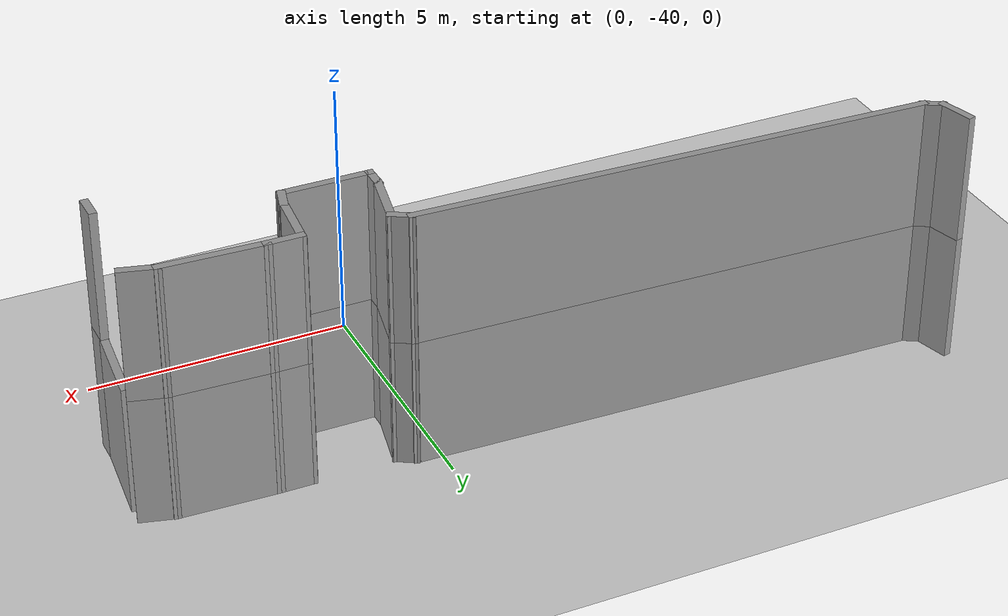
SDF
<sdf version="1.7">
 <world name="default">
  <model name="ground_plane">
   <static>1</static>
   <link name="link">
    <collision name="collision">
     <geometry><plane><normal>0 0 1</normal><size>100 100</size></plane></geometry>
     <surface>
      <contact><collide_bitmask>65535</collide_bitmask></contact>
      <friction><ode><mu>100</mu><mu2>50</mu2></ode></friction>
     </surface>
    </collision>
    <visual name="visual">
     <cast_shadows>0</cast_shadows>
     <geometry><plane><normal>0 0 1</normal><size>100 100</size></plane></geometry>
     <material>
      <script><uri>file://media/materials/scripts/gazebo.material</uri><name>Gazebo/Grey</name></script>
     </material>
    </visual>
   </link>
  </model>
  <model name="EnvDC01">
   <link name="Wall_130">
    <pose>-16.1981 -28.4923 0 0 -0 1.8326</pose>
    <visual name="Wall_130_Visual">
     <pose>0 0 1.25 0 -0 0</pose>
     <geometry><box><size>0.75 0.15 2.5</size></box></geometry>
     <material>
      <script><uri>file://media/materials/scripts/gazebo.material</uri><name>Gazebo/Grey</name></script>
      <ambient>1 1 1 1</ambient>
      <shader type="pixel"/>
     </material>
     <meta><layer>0</layer></meta>
    </visual>
    <collision name="Wall_130_Collision">
     <pose>0 0 1.25 0 -0 0</pose>
     <geometry><box><size>0.75 0.15 2.5</size></box></geometry>
     <surface>
      <friction>
       <ode><mu>1</mu><mu2>1</mu2><fdir1>0 0 0</fdir1><slip1>0</slip1><slip2>0</slip2></ode>
       <torsional>
        <coefficient>1</coefficient>
        <patch_radius>0</patch_radius>
        <surface_radius>0</surface_radius>
        <use_patch_radius>1</use_patch_radius>
        <ode><slip>0</slip></ode>
       </torsional>
      </friction>
      <bounce><restitution_coefficient>0</restitution_coefficient><threshold>1e+06</threshold></bounce>
      <contact>
       <collide_without_contact>0</collide_without_contact>
       <collide_without_contact_bitmask>1</collide_without_contact_bitmask>
       <collide_bitmask>1</collide_bitmask>
       <ode>
        <soft_cfm>0</soft_cfm>
        <soft_erp>0.2</soft_erp>
        <kp>1e+13</kp>
        <kd>1</kd>
        <max_vel>0.01</max_vel>
        <min_depth>0</min_depth>
       </ode>
       <bullet>
        <split_impulse>1</split_impulse>
        <split_impulse_penetration_threshold>-0.01</split_impulse_penetration_threshold>
        <soft_cfm>0</soft_cfm>
        <soft_erp>0.2</soft_erp>
        <kp>1e+13</kp>
        <kd>1</kd>
       </bullet>
      </contact>
     </surface>
    </collision>
   </link>
   <link name="Wall_235">
    <pose>-1.35012 -31.7884 0 0 -0 1.5708</pose>
    <visual name="Wall_235_Visual">
     <pose>0 0 1.25 0 -0 0</pose>
     <geometry><box><size>0.5 0.15 2.5</size></box></geometry>
     <material>
      <script><uri>file://media/materials/scripts/gazebo.material</uri><name>Gazebo/Grey</name></script>
      <ambient>1 1 1 1</ambient>
      <shader type="pixel"/>
     </material>
     <meta><layer>0</layer></meta>
    </visual>
    <collision name="Wall_235_Collision">
     <pose>0 0 1.25 0 -0 0</pose>
     <geometry><box><size>0.5 0.15 2.5</size></box></geometry>
     <surface>
      <friction>
       <ode><mu>1</mu><mu2>1</mu2><fdir1>0 0 0</fdir1><slip1>0</slip1><slip2>0</slip2></ode>
       <torsional>
        <coefficient>1</coefficient>
        <patch_radius>0</patch_radius>
        <surface_radius>0</surface_radius>
        <use_patch_radius>1</use_patch_radius>
        <ode><slip>0</slip></ode>
       </torsional>
      </friction>
      <bounce><restitution_coefficient>0</restitution_coefficient><threshold>1e+06</threshold></bounce>
      <contact>
       <collide_without_contact>0</collide_without_contact>
       <collide_without_contact_bitmask>1</collide_without_contact_bitmask>
       <collide_bitmask>1</collide_bitmask>
       <ode>
        <soft_cfm>0</soft_cfm>
        <soft_erp>0.2</soft_erp>
        <kp>1e+13</kp>
        <kd>1</kd>
        <max_vel>0.01</max_vel>
        <min_depth>0</min_depth>
       </ode>
       <bullet>
        <split_impulse>1</split_impulse>
        <split_impulse_penetration_threshold>-0.01</split_impulse_penetration_threshold>
        <soft_cfm>0</soft_cfm>
        <soft_erp>0.2</soft_erp>
        <kp>1e+13</kp>
        <kd>1</kd>
       </bullet>
      </contact>
     </surface>
    </collision>
   </link>
   <link name="Wall_236">
    <pose>-1.27248 -30.8236 0 0 -0 1.4728</pose>
    <visual name="Wall_236_Visual">
     <pose>0 0 1.25 0 -0 0</pose>
     <geometry><box><size>1.73717 0.15 2.5</size></box></geometry>
     <material>
      <script><uri>file://media/materials/scripts/gazebo.material</uri><name>Gazebo/Grey</name></script>
      <ambient>1 1 1 1</ambient>
      <shader type="pixel"/>
     </material>
     <meta><layer>0</layer></meta>
    </visual>
    <collision name="Wall_236_Collision">
     <pose>0 0 1.25 0 -0 0</pose>
     <geometry><box><size>1.73717 0.15 2.5</size></box></geometry>
     <surface>
      <friction>
       <ode><mu>1</mu><mu2>1</mu2><fdir1>0 0 0</fdir1><slip1>0</slip1><slip2>0</slip2></ode>
       <torsional>
        <coefficient>1</coefficient>
        <patch_radius>0</patch_radius>
        <surface_radius>0</surface_radius>
        <use_patch_radius>1</use_patch_radius>
        <ode><slip>0</slip></ode>
       </torsional>
      </friction>
      <bounce><restitution_coefficient>0</restitution_coefficient><threshold>1e+06</threshold></bounce>
      <contact>
       <collide_without_contact>0</collide_without_contact>
       <collide_without_contact_bitmask>1</collide_without_contact_bitmask>
       <collide_bitmask>1</collide_bitmask>
       <ode>
        <soft_cfm>0</soft_cfm>
        <soft_erp>0.2</soft_erp>
        <kp>1e+13</kp>
        <kd>1</kd>
        <max_vel>0.01</max_vel>
        <min_depth>0</min_depth>
       </ode>
       <bullet>
        <split_impulse>1</split_impulse>
        <split_impulse_penetration_threshold>-0.01</split_impulse_penetration_threshold>
        <soft_cfm>0</soft_cfm>
        <soft_erp>0.2</soft_erp>
        <kp>1e+13</kp>
        <kd>1</kd>
       </bullet>
      </contact>
     </surface>
    </collision>
   </link>
   <link name="Wall_239">
    <pose>-1.48461 -29.6062 0 0 -0 2.87979</pose>
    <visual name="Wall_239_Visual">
     <pose>0 0 1.25 0 -0 0</pose>
     <geometry><box><size>0.75 0.15 2.5</size></box></geometry>
     <material>
      <script><uri>file://media/materials/scripts/gazebo.material</uri><name>Gazebo/Grey</name></script>
      <ambient>1 1 1 1</ambient>
      <shader type="pixel"/>
     </material>
     <meta><layer>0</layer></meta>
    </visual>
    <collision name="Wall_239_Collision">
     <pose>0 0 1.25 0 -0 0</pose>
     <geometry><box><size>0.75 0.15 2.5</size></box></geometry>
     <surface>
      <friction>
       <ode><mu>1</mu><mu2>1</mu2><fdir1>0 0 0</fdir1><slip1>0</slip1><slip2>0</slip2></ode>
       <torsional>
        <coefficient>1</coefficient>
        <patch_radius>0</patch_radius>
        <surface_radius>0</surface_radius>
        <use_patch_radius>1</use_patch_radius>
        <ode><slip>0</slip></ode>
       </torsional>
      </friction>
      <bounce><restitution_coefficient>0</restitution_coefficient><threshold>1e+06</threshold></bounce>
      <contact>
       <collide_without_contact>0</collide_without_contact>
       <collide_without_contact_bitmask>1</collide_without_contact_bitmask>
       <collide_bitmask>1</collide_bitmask>
       <ode>
        <soft_cfm>0</soft_cfm>
        <soft_erp>0.2</soft_erp>
        <kp>1e+13</kp>
        <kd>1</kd>
        <max_vel>0.01</max_vel>
        <min_depth>0</min_depth>
       </ode>
       <bullet>
        <split_impulse>1</split_impulse>
        <split_impulse_penetration_threshold>-0.01</split_impulse_penetration_threshold>
        <soft_cfm>0</soft_cfm>
        <soft_erp>0.2</soft_erp>
        <kp>1e+13</kp>
        <kd>1</kd>
       </bullet>
      </contact>
     </surface>
    </collision>
   </link>
   <link name="Wall_240">
    <pose>-2.69513 -29.4962 0 0 -0 3.10647</pose>
    <visual name="Wall_240_Visual">
     <pose>0 0 1.25 0 -0 0</pose>
     <geometry><box><size>1.99262 0.15 2.5</size></box></geometry>
     <material>
      <script><uri>file://media/materials/scripts/gazebo.material</uri><name>Gazebo/Grey</name></script>
      <ambient>1 1 1 1</ambient>
      <shader type="pixel"/>
     </material>
     <meta><layer>0</layer></meta>
    </visual>
    <collision name="Wall_240_Collision">
     <pose>0 0 1.25 0 -0 0</pose>
     <geometry><box><size>1.99262 0.15 2.5</size></box></geometry>
     <surface>
      <friction>
       <ode><mu>1</mu><mu2>1</mu2><fdir1>0 0 0</fdir1><slip1>0</slip1><slip2>0</slip2></ode>
       <torsional>
        <coefficient>1</coefficient>
        <patch_radius>0</patch_radius>
        <surface_radius>0</surface_radius>
        <use_patch_radius>1</use_patch_radius>
        <ode><slip>0</slip></ode>
       </torsional>
      </friction>
      <bounce><restitution_coefficient>0</restitution_coefficient><threshold>1e+06</threshold></bounce>
      <contact>
       <collide_without_contact>0</collide_without_contact>
       <collide_without_contact_bitmask>1</collide_without_contact_bitmask>
       <collide_bitmask>1</collide_bitmask>
       <ode>
        <soft_cfm>0</soft_cfm>
        <soft_erp>0.2</soft_erp>
        <kp>1e+13</kp>
        <kd>1</kd>
        <max_vel>0.01</max_vel>
        <min_depth>0</min_depth>
       </ode>
       <bullet>
        <split_impulse>1</split_impulse>
        <split_impulse_penetration_threshold>-0.01</split_impulse_penetration_threshold>
        <soft_cfm>0</soft_cfm>
        <soft_erp>0.2</soft_erp>
        <kp>1e+13</kp>
        <kd>1</kd>
       </bullet>
      </contact>
     </surface>
    </collision>
   </link>
   <link name="Wall_241">
    <pose>-3.91587 -29.4638 0 0 -0 3.14159</pose>
    <visual name="Wall_241_Visual">
     <pose>0 0 1.25 0 -0 0</pose>
     <geometry><box><size>0.75 0.15 2.5</size></box></geometry>
     <material>
      <script><uri>file://media/materials/scripts/gazebo.material</uri><name>Gazebo/Grey</name></script>
      <ambient>1 1 1 1</ambient>
      <shader type="pixel"/>
     </material>
     <meta><layer>0</layer></meta>
    </visual>
    <collision name="Wall_241_Collision">
     <pose>0 0 1.25 0 -0 0</pose>
     <geometry><box><size>0.75 0.15 2.5</size></box></geometry>
     <surface>
      <friction>
       <ode><mu>1</mu><mu2>1</mu2><fdir1>0 0 0</fdir1><slip1>0</slip1><slip2>0</slip2></ode>
       <torsional>
        <coefficient>1</coefficient>
        <patch_radius>0</patch_radius>
        <surface_radius>0</surface_radius>
        <use_patch_radius>1</use_patch_radius>
        <ode><slip>0</slip></ode>
       </torsional>
      </friction>
      <bounce><restitution_coefficient>0</restitution_coefficient><threshold>1e+06</threshold></bounce>
      <contact>
       <collide_without_contact>0</collide_without_contact>
       <collide_without_contact_bitmask>1</collide_without_contact_bitmask>
       <collide_bitmask>1</collide_bitmask>
       <ode>
        <soft_cfm>0</soft_cfm>
        <soft_erp>0.2</soft_erp>
        <kp>1e+13</kp>
        <kd>1</kd>
        <max_vel>0.01</max_vel>
        <min_depth>0</min_depth>
       </ode>
       <bullet>
        <split_impulse>1</split_impulse>
        <split_impulse_penetration_threshold>-0.01</split_impulse_penetration_threshold>
        <soft_cfm>0</soft_cfm>
        <soft_erp>0.2</soft_erp>
        <kp>1e+13</kp>
        <kd>1</kd>
       </bullet>
      </contact>
     </surface>
    </collision>
   </link>
   <link name="Wall_243">
    <pose>-4.26763 -29.9951 0 0 0 -1.66793</pose>
    <visual name="Wall_243_Visual">
     <pose>0 0 1.25 0 -0 0</pose>
     <geometry><box><size>1.21755 0.15 2.5</size></box></geometry>
     <material>
      <script><uri>file://media/materials/scripts/gazebo.material</uri><name>Gazebo/Grey</name></script>
      <ambient>1 1 1 1</ambient>
      <shader type="pixel"/>
     </material>
     <meta><layer>0</layer></meta>
    </visual>
    <collision name="Wall_243_Collision">
     <pose>0 0 1.25 0 -0 0</pose>
     <geometry><box><size>1.21755 0.15 2.5</size></box></geometry>
     <surface>
      <friction>
       <ode><mu>1</mu><mu2>1</mu2><fdir1>0 0 0</fdir1><slip1>0</slip1><slip2>0</slip2></ode>
       <torsional>
        <coefficient>1</coefficient>
        <patch_radius>0</patch_radius>
        <surface_radius>0</surface_radius>
        <use_patch_radius>1</use_patch_radius>
        <ode><slip>0</slip></ode>
       </torsional>
      </friction>
      <bounce><restitution_coefficient>0</restitution_coefficient><threshold>1e+06</threshold></bounce>
      <contact>
       <collide_without_contact>0</collide_without_contact>
       <collide_without_contact_bitmask>1</collide_without_contact_bitmask>
       <collide_bitmask>1</collide_bitmask>
       <ode>
        <soft_cfm>0</soft_cfm>
        <soft_erp>0.2</soft_erp>
        <kp>1e+13</kp>
        <kd>1</kd>
        <max_vel>0.01</max_vel>
        <min_depth>0</min_depth>
       </ode>
       <bullet>
        <split_impulse>1</split_impulse>
        <split_impulse_penetration_threshold>-0.01</split_impulse_penetration_threshold>
        <soft_cfm>0</soft_cfm>
        <soft_erp>0.2</soft_erp>
        <kp>1e+13</kp>
        <kd>1</kd>
       </bullet>
      </contact>
     </surface>
    </collision>
   </link>
   <link name="Wall_244">
    <pose>-4.36469 -30.6954 0 0 0 -1.8326</pose>
    <visual name="Wall_244_Visual">
     <pose>0 0 1.25 0 -0 0</pose>
     <geometry><box><size>0.5 0.15 2.5</size></box></geometry>
     <material>
      <script><uri>file://media/materials/scripts/gazebo.material</uri><name>Gazebo/Grey</name></script>
      <ambient>1 1 1 1</ambient>
      <shader type="pixel"/>
     </material>
     <meta><layer>0</layer></meta>
    </visual>
    <collision name="Wall_244_Collision">
     <pose>0 0 1.25 0 -0 0</pose>
     <geometry><box><size>0.5 0.15 2.5</size></box></geometry>
     <surface>
      <friction>
       <ode><mu>1</mu><mu2>1</mu2><fdir1>0 0 0</fdir1><slip1>0</slip1><slip2>0</slip2></ode>
       <torsional>
        <coefficient>1</coefficient>
        <patch_radius>0</patch_radius>
        <surface_radius>0</surface_radius>
        <use_patch_radius>1</use_patch_radius>
        <ode><slip>0</slip></ode>
       </torsional>
      </friction>
      <bounce><restitution_coefficient>0</restitution_coefficient><threshold>1e+06</threshold></bounce>
      <contact>
       <collide_without_contact>0</collide_without_contact>
       <collide_without_contact_bitmask>1</collide_without_contact_bitmask>
       <collide_bitmask>1</collide_bitmask>
       <ode>
        <soft_cfm>0</soft_cfm>
        <soft_erp>0.2</soft_erp>
        <kp>1e+13</kp>
        <kd>1</kd>
        <max_vel>0.01</max_vel>
        <min_depth>0</min_depth>
       </ode>
       <bullet>
        <split_impulse>1</split_impulse>
        <split_impulse_penetration_threshold>-0.01</split_impulse_penetration_threshold>
        <soft_cfm>0</soft_cfm>
        <soft_erp>0.2</soft_erp>
        <kp>1e+13</kp>
        <kd>1</kd>
       </bullet>
      </contact>
     </surface>
    </collision>
   </link>
   <link name="Wall_245">
    <pose>-5.20998 -30.8644 0 0 -0 3.14159</pose>
    <visual name="Wall_245_Visual">
     <pose>0 0 1.25 0 -0 0</pose>
     <geometry><box><size>1.75 0.15 2.5</size></box></geometry>
     <material>
      <script><uri>file://media/materials/scripts/gazebo.material</uri><name>Gazebo/Grey</name></script>
      <ambient>1 1 1 1</ambient>
      <shader type="pixel"/>
     </material>
     <meta><layer>0</layer></meta>
    </visual>
    <collision name="Wall_245_Collision">
     <pose>0 0 1.25 0 -0 0</pose>
     <geometry><box><size>1.75 0.15 2.5</size></box></geometry>
     <surface>
      <friction>
       <ode><mu>1</mu><mu2>1</mu2><fdir1>0 0 0</fdir1><slip1>0</slip1><slip2>0</slip2></ode>
       <torsional>
        <coefficient>1</coefficient>
        <patch_radius>0</patch_radius>
        <surface_radius>0</surface_radius>
        <use_patch_radius>1</use_patch_radius>
        <ode><slip>0</slip></ode>
       </torsional>
      </friction>
      <bounce><restitution_coefficient>0</restitution_coefficient><threshold>1e+06</threshold></bounce>
      <contact>
       <collide_without_contact>0</collide_without_contact>
       <collide_without_contact_bitmask>1</collide_without_contact_bitmask>
       <collide_bitmask>1</collide_bitmask>
       <ode>
        <soft_cfm>0</soft_cfm>
        <soft_erp>0.2</soft_erp>
        <kp>1e+13</kp>
        <kd>1</kd>
        <max_vel>0.01</max_vel>
        <min_depth>0</min_depth>
       </ode>
       <bullet>
        <split_impulse>1</split_impulse>
        <split_impulse_penetration_threshold>-0.01</split_impulse_penetration_threshold>
        <soft_cfm>0</soft_cfm>
        <soft_erp>0.2</soft_erp>
        <kp>1e+13</kp>
        <kd>1</kd>
       </bullet>
      </contact>
     </surface>
    </collision>
   </link>
   <link name="Wall_246">
    <pose>-6.00998 -30.6894 0 0 -0 1.5708</pose>
    <visual name="Wall_246_Visual">
     <pose>0 0 1.25 0 -0 0</pose>
     <geometry><box><size>0.5 0.15 2.5</size></box></geometry>
     <material>
      <script><uri>file://media/materials/scripts/gazebo.material</uri><name>Gazebo/Grey</name></script>
      <ambient>1 1 1 1</ambient>
      <shader type="pixel"/>
     </material>
     <meta><layer>0</layer></meta>
    </visual>
    <collision name="Wall_246_Collision">
     <pose>0 0 1.25 0 -0 0</pose>
     <geometry><box><size>0.5 0.15 2.5</size></box></geometry>
     <surface>
      <friction>
       <ode><mu>1</mu><mu2>1</mu2><fdir1>0 0 0</fdir1><slip1>0</slip1><slip2>0</slip2></ode>
       <torsional>
        <coefficient>1</coefficient>
        <patch_radius>0</patch_radius>
        <surface_radius>0</surface_radius>
        <use_patch_radius>1</use_patch_radius>
        <ode><slip>0</slip></ode>
       </torsional>
      </friction>
      <bounce><restitution_coefficient>0</restitution_coefficient><threshold>1e+06</threshold></bounce>
      <contact>
       <collide_without_contact>0</collide_without_contact>
       <collide_without_contact_bitmask>1</collide_without_contact_bitmask>
       <collide_bitmask>1</collide_bitmask>
       <ode>
        <soft_cfm>0</soft_cfm>
        <soft_erp>0.2</soft_erp>
        <kp>1e+13</kp>
        <kd>1</kd>
        <max_vel>0.01</max_vel>
        <min_depth>0</min_depth>
       </ode>
       <bullet>
        <split_impulse>1</split_impulse>
        <split_impulse_penetration_threshold>-0.01</split_impulse_penetration_threshold>
        <soft_cfm>0</soft_cfm>
        <soft_erp>0.2</soft_erp>
        <kp>1e+13</kp>
        <kd>1</kd>
       </bullet>
      </contact>
     </surface>
    </collision>
   </link>
   <link name="Wall_248">
    <pose>-5.89998 -29.9789 0 0 -0 1.36821</pose>
    <visual name="Wall_248_Visual">
     <pose>0 0 1.25 0 -0 0</pose>
     <geometry><box><size>1.2434 0.15 2.5</size></box></geometry>
     <material>
      <script><uri>file://media/materials/scripts/gazebo.material</uri><name>Gazebo/Grey</name></script>
      <ambient>1 1 1 1</ambient>
      <shader type="pixel"/>
     </material>
     <meta><layer>0</layer></meta>
    </visual>
    <collision name="Wall_248_Collision">
     <pose>0 0 1.25 0 -0 0</pose>
     <geometry><box><size>1.2434 0.15 2.5</size></box></geometry>
     <surface>
      <friction>
       <ode><mu>1</mu><mu2>1</mu2><fdir1>0 0 0</fdir1><slip1>0</slip1><slip2>0</slip2></ode>
       <torsional>
        <coefficient>1</coefficient>
        <patch_radius>0</patch_radius>
        <surface_radius>0</surface_radius>
        <use_patch_radius>1</use_patch_radius>
        <ode><slip>0</slip></ode>
       </torsional>
      </friction>
      <bounce><restitution_coefficient>0</restitution_coefficient><threshold>1e+06</threshold></bounce>
      <contact>
       <collide_without_contact>0</collide_without_contact>
       <collide_without_contact_bitmask>1</collide_without_contact_bitmask>
       <collide_bitmask>1</collide_bitmask>
       <ode>
        <soft_cfm>0</soft_cfm>
        <soft_erp>0.2</soft_erp>
        <kp>1e+13</kp>
        <kd>1</kd>
        <max_vel>0.01</max_vel>
        <min_depth>0</min_depth>
       </ode>
       <bullet>
        <split_impulse>1</split_impulse>
        <split_impulse_penetration_threshold>-0.01</split_impulse_penetration_threshold>
        <soft_cfm>0</soft_cfm>
        <soft_erp>0.2</soft_erp>
        <kp>1e+13</kp>
        <kd>1</kd>
       </bullet>
      </contact>
     </surface>
    </collision>
   </link>
   <link name="Wall_250">
    <pose>-15.9689 -28.8696 0 0 0 -0.523599</pose>
    <visual name="Wall_250_Visual">
     <pose>0 0 1.25 0 -0 0</pose>
     <geometry><box><size>0.5 0.15 2.5</size></box></geometry>
     <material>
      <script><uri>file://media/materials/scripts/gazebo.material</uri><name>Gazebo/Grey</name></script>
      <ambient>1 1 1 1</ambient>
      <shader type="pixel"/>
     </material>
     <meta><layer>0</layer></meta>
    </visual>
    <collision name="Wall_250_Collision">
     <pose>0 0 1.25 0 -0 0</pose>
     <geometry><box><size>0.5 0.15 2.5</size></box></geometry>
     <surface>
      <friction>
       <ode><mu>1</mu><mu2>1</mu2><fdir1>0 0 0</fdir1><slip1>0</slip1><slip2>0</slip2></ode>
       <torsional>
        <coefficient>1</coefficient>
        <patch_radius>0</patch_radius>
        <surface_radius>0</surface_radius>
        <use_patch_radius>1</use_patch_radius>
        <ode><slip>0</slip></ode>
       </torsional>
      </friction>
      <bounce><restitution_coefficient>0</restitution_coefficient><threshold>1e+06</threshold></bounce>
      <contact>
       <collide_without_contact>0</collide_without_contact>
       <collide_without_contact_bitmask>1</collide_without_contact_bitmask>
       <collide_bitmask>1</collide_bitmask>
       <ode>
        <soft_cfm>0</soft_cfm>
        <soft_erp>0.2</soft_erp>
        <kp>1e+13</kp>
        <kd>1</kd>
        <max_vel>0.01</max_vel>
        <min_depth>0</min_depth>
       </ode>
       <bullet>
        <split_impulse>1</split_impulse>
        <split_impulse_penetration_threshold>-0.01</split_impulse_penetration_threshold>
        <soft_cfm>0</soft_cfm>
        <soft_erp>0.2</soft_erp>
        <kp>1e+13</kp>
        <kd>1</kd>
       </bullet>
      </contact>
     </surface>
    </collision>
   </link>
   <link name="Wall_251">
    <pose>-10.9552 -29.1127 0 0 0 -0.032002</pose>
    <visual name="Wall_251_Visual">
     <pose>0 0 1.25 0 -0 0</pose>
     <geometry><box><size>9.87927 0.15 2.5</size></box></geometry>
     <material>
      <script><uri>file://media/materials/scripts/gazebo.material</uri><name>Gazebo/Grey</name></script>
      <ambient>1 1 1 1</ambient>
      <shader type="pixel"/>
     </material>
     <meta><layer>0</layer></meta>
    </visual>
    <collision name="Wall_251_Collision">
     <pose>0 0 1.25 0 -0 0</pose>
     <geometry><box><size>9.87927 0.15 2.5</size></box></geometry>
     <surface>
      <friction>
       <ode><mu>1</mu><mu2>1</mu2><fdir1>0 0 0</fdir1><slip1>0</slip1><slip2>0</slip2></ode>
       <torsional>
        <coefficient>1</coefficient>
        <patch_radius>0</patch_radius>
        <surface_radius>0</surface_radius>
        <use_patch_radius>1</use_patch_radius>
        <ode><slip>0</slip></ode>
       </torsional>
      </friction>
      <bounce><restitution_coefficient>0</restitution_coefficient><threshold>1e+06</threshold></bounce>
      <contact>
       <collide_without_contact>0</collide_without_contact>
       <collide_without_contact_bitmask>1</collide_without_contact_bitmask>
       <collide_bitmask>1</collide_bitmask>
       <ode>
        <soft_cfm>0</soft_cfm>
        <soft_erp>0.2</soft_erp>
        <kp>1e+13</kp>
        <kd>1</kd>
        <max_vel>0.01</max_vel>
        <min_depth>0</min_depth>
       </ode>
       <bullet>
        <split_impulse>1</split_impulse>
        <split_impulse_penetration_threshold>-0.01</split_impulse_penetration_threshold>
        <soft_cfm>0</soft_cfm>
        <soft_erp>0.2</soft_erp>
        <kp>1e+13</kp>
        <kd>1</kd>
       </bullet>
      </contact>
     </surface>
    </collision>
   </link>
   <link name="Wall_252">
    <pose>-5.94154 -29.3559 0 0 0 -0.523599</pose>
    <visual name="Wall_252_Visual">
     <pose>0 0 1.25 0 -0 0</pose>
     <geometry><box><size>0.5 0.15 2.5</size></box></geometry>
     <material>
      <script><uri>file://media/materials/scripts/gazebo.material</uri><name>Gazebo/Grey</name></script>
      <ambient>1 1 1 1</ambient>
      <shader type="pixel"/>
     </material>
     <meta><layer>0</layer></meta>
    </visual>
    <collision name="Wall_252_Collision">
     <pose>0 0 1.25 0 -0 0</pose>
     <geometry><box><size>0.5 0.15 2.5</size></box></geometry>
     <surface>
      <friction>
       <ode><mu>1</mu><mu2>1</mu2><fdir1>0 0 0</fdir1><slip1>0</slip1><slip2>0</slip2></ode>
       <torsional>
        <coefficient>1</coefficient>
        <patch_radius>0</patch_radius>
        <surface_radius>0</surface_radius>
        <use_patch_radius>1</use_patch_radius>
        <ode><slip>0</slip></ode>
       </torsional>
      </friction>
      <bounce><restitution_coefficient>0</restitution_coefficient><threshold>1e+06</threshold></bounce>
      <contact>
       <collide_without_contact>0</collide_without_contact>
       <collide_without_contact_bitmask>1</collide_without_contact_bitmask>
       <collide_bitmask>1</collide_bitmask>
       <ode>
        <soft_cfm>0</soft_cfm>
        <soft_erp>0.2</soft_erp>
        <kp>1e+13</kp>
        <kd>1</kd>
        <max_vel>0.01</max_vel>
        <min_depth>0</min_depth>
       </ode>
       <bullet>
        <split_impulse>1</split_impulse>
        <split_impulse_penetration_threshold>-0.01</split_impulse_penetration_threshold>
        <soft_cfm>0</soft_cfm>
        <soft_erp>0.2</soft_erp>
        <kp>1e+13</kp>
        <kd>1</kd>
       </bullet>
      </contact>
     </surface>
    </collision>
   </link>
   <link name="Wall_328">
    <pose>-16.1981 -28.4923 2.5 0 -0 1.8326</pose>
    <visual name="Wall_328_Visual">
     <pose>0 0 1.25 0 -0 0</pose>
     <geometry><box><size>0.75 0.15 2.5</size></box></geometry>
     <material>
      <script><uri>file://media/materials/scripts/gazebo.material</uri><name>Gazebo/Grey</name></script>
      <ambient>1 1 1 1</ambient>
      <shader type="pixel"/>
     </material>
     <meta><layer>1</layer></meta>
    </visual>
    <collision name="Wall_328_Collision">
     <pose>0 0 1.25 0 -0 0</pose>
     <geometry><box><size>0.75 0.15 2.5</size></box></geometry>
     <surface>
      <friction>
       <ode><mu>1</mu><mu2>1</mu2><fdir1>0 0 0</fdir1><slip1>0</slip1><slip2>0</slip2></ode>
       <torsional>
        <coefficient>1</coefficient>
        <patch_radius>0</patch_radius>
        <surface_radius>0</surface_radius>
        <use_patch_radius>1</use_patch_radius>
        <ode><slip>0</slip></ode>
       </torsional>
      </friction>
      <bounce><restitution_coefficient>0</restitution_coefficient><threshold>1e+06</threshold></bounce>
      <contact>
       <collide_without_contact>0</collide_without_contact>
       <collide_without_contact_bitmask>1</collide_without_contact_bitmask>
       <collide_bitmask>1</collide_bitmask>
       <ode>
        <soft_cfm>0</soft_cfm>
        <soft_erp>0.2</soft_erp>
        <kp>1e+13</kp>
        <kd>1</kd>
        <max_vel>0.01</max_vel>
        <min_depth>0</min_depth>
       </ode>
       <bullet>
        <split_impulse>1</split_impulse>
        <split_impulse_penetration_threshold>-0.01</split_impulse_penetration_threshold>
        <soft_cfm>0</soft_cfm>
        <soft_erp>0.2</soft_erp>
        <kp>1e+13</kp>
        <kd>1</kd>
       </bullet>
      </contact>
     </surface>
    </collision>
   </link>
   <link name="Wall_401">
    <pose>-1.35012 -31.7884 2.5 0 -0 1.5708</pose>
    <visual name="Wall_401_Visual">
     <pose>0 0 1.25 0 -0 0</pose>
     <geometry><box><size>0.5 0.15 2.5</size></box></geometry>
     <material>
      <script><uri>file://media/materials/scripts/gazebo.material</uri><name>Gazebo/Grey</name></script>
      <ambient>1 1 1 1</ambient>
      <shader type="pixel"/>
     </material>
     <meta><layer>1</layer></meta>
    </visual>
    <collision name="Wall_401_Collision">
     <pose>0 0 1.25 0 -0 0</pose>
     <geometry><box><size>0.5 0.15 2.5</size></box></geometry>
     <surface>
      <friction>
       <ode><mu>1</mu><mu2>1</mu2><fdir1>0 0 0</fdir1><slip1>0</slip1><slip2>0</slip2></ode>
       <torsional>
        <coefficient>1</coefficient>
        <patch_radius>0</patch_radius>
        <surface_radius>0</surface_radius>
        <use_patch_radius>1</use_patch_radius>
        <ode><slip>0</slip></ode>
       </torsional>
      </friction>
      <bounce><restitution_coefficient>0</restitution_coefficient><threshold>1e+06</threshold></bounce>
      <contact>
       <collide_without_contact>0</collide_without_contact>
       <collide_without_contact_bitmask>1</collide_without_contact_bitmask>
       <collide_bitmask>1</collide_bitmask>
       <ode>
        <soft_cfm>0</soft_cfm>
        <soft_erp>0.2</soft_erp>
        <kp>1e+13</kp>
        <kd>1</kd>
        <max_vel>0.01</max_vel>
        <min_depth>0</min_depth>
       </ode>
       <bullet>
        <split_impulse>1</split_impulse>
        <split_impulse_penetration_threshold>-0.01</split_impulse_penetration_threshold>
        <soft_cfm>0</soft_cfm>
        <soft_erp>0.2</soft_erp>
        <kp>1e+13</kp>
        <kd>1</kd>
       </bullet>
      </contact>
     </surface>
    </collision>
   </link>
   <link name="Wall_404">
    <pose>-1.48461 -29.6062 2.5 0 -0 2.87979</pose>
    <visual name="Wall_404_Visual">
     <pose>0 0 1.25 0 -0 0</pose>
     <geometry><box><size>0.75 0.15 2.5</size></box></geometry>
     <material>
      <script><uri>file://media/materials/scripts/gazebo.material</uri><name>Gazebo/Grey</name></script>
      <ambient>1 1 1 1</ambient>
      <shader type="pixel"/>
     </material>
     <meta><layer>1</layer></meta>
    </visual>
    <collision name="Wall_404_Collision">
     <pose>0 0 1.25 0 -0 0</pose>
     <geometry><box><size>0.75 0.15 2.5</size></box></geometry>
     <surface>
      <friction>
       <ode><mu>1</mu><mu2>1</mu2><fdir1>0 0 0</fdir1><slip1>0</slip1><slip2>0</slip2></ode>
       <torsional>
        <coefficient>1</coefficient>
        <patch_radius>0</patch_radius>
        <surface_radius>0</surface_radius>
        <use_patch_radius>1</use_patch_radius>
        <ode><slip>0</slip></ode>
       </torsional>
      </friction>
      <bounce><restitution_coefficient>0</restitution_coefficient><threshold>1e+06</threshold></bounce>
      <contact>
       <collide_without_contact>0</collide_without_contact>
       <collide_without_contact_bitmask>1</collide_without_contact_bitmask>
       <collide_bitmask>1</collide_bitmask>
       <ode>
        <soft_cfm>0</soft_cfm>
        <soft_erp>0.2</soft_erp>
        <kp>1e+13</kp>
        <kd>1</kd>
        <max_vel>0.01</max_vel>
        <min_depth>0</min_depth>
       </ode>
       <bullet>
        <split_impulse>1</split_impulse>
        <split_impulse_penetration_threshold>-0.01</split_impulse_penetration_threshold>
        <soft_cfm>0</soft_cfm>
        <soft_erp>0.2</soft_erp>
        <kp>1e+13</kp>
        <kd>1</kd>
       </bullet>
      </contact>
     </surface>
    </collision>
   </link>
   <link name="Wall_405">
    <pose>-2.69512 -29.4962 2.5 0 -0 3.10647</pose>
    <visual name="Wall_405_Visual">
     <pose>0 0 1.25 0 -0 0</pose>
     <geometry><box><size>1.99262 0.15 2.5</size></box></geometry>
     <material>
      <script><uri>file://media/materials/scripts/gazebo.material</uri><name>Gazebo/Grey</name></script>
      <ambient>1 1 1 1</ambient>
      <shader type="pixel"/>
     </material>
     <meta><layer>1</layer></meta>
    </visual>
    <collision name="Wall_405_Collision">
     <pose>0 0 1.25 0 -0 0</pose>
     <geometry><box><size>1.99262 0.15 2.5</size></box></geometry>
     <surface>
      <friction>
       <ode><mu>1</mu><mu2>1</mu2><fdir1>0 0 0</fdir1><slip1>0</slip1><slip2>0</slip2></ode>
       <torsional>
        <coefficient>1</coefficient>
        <patch_radius>0</patch_radius>
        <surface_radius>0</surface_radius>
        <use_patch_radius>1</use_patch_radius>
        <ode><slip>0</slip></ode>
       </torsional>
      </friction>
      <bounce><restitution_coefficient>0</restitution_coefficient><threshold>1e+06</threshold></bounce>
      <contact>
       <collide_without_contact>0</collide_without_contact>
       <collide_without_contact_bitmask>1</collide_without_contact_bitmask>
       <collide_bitmask>1</collide_bitmask>
       <ode>
        <soft_cfm>0</soft_cfm>
        <soft_erp>0.2</soft_erp>
        <kp>1e+13</kp>
        <kd>1</kd>
        <max_vel>0.01</max_vel>
        <min_depth>0</min_depth>
       </ode>
       <bullet>
        <split_impulse>1</split_impulse>
        <split_impulse_penetration_threshold>-0.01</split_impulse_penetration_threshold>
        <soft_cfm>0</soft_cfm>
        <soft_erp>0.2</soft_erp>
        <kp>1e+13</kp>
        <kd>1</kd>
       </bullet>
      </contact>
     </surface>
    </collision>
   </link>
   <link name="Wall_406">
    <pose>-3.91587 -29.4638 2.5 0 -0 3.14159</pose>
    <visual name="Wall_406_Visual">
     <pose>0 0 1.25 0 -0 0</pose>
     <geometry><box><size>0.75 0.15 2.5</size></box></geometry>
     <material>
      <script><uri>file://media/materials/scripts/gazebo.material</uri><name>Gazebo/Grey</name></script>
      <ambient>1 1 1 1</ambient>
      <shader type="pixel"/>
     </material>
     <meta><layer>1</layer></meta>
    </visual>
    <collision name="Wall_406_Collision">
     <pose>0 0 1.25 0 -0 0</pose>
     <geometry><box><size>0.75 0.15 2.5</size></box></geometry>
     <surface>
      <friction>
       <ode><mu>1</mu><mu2>1</mu2><fdir1>0 0 0</fdir1><slip1>0</slip1><slip2>0</slip2></ode>
       <torsional>
        <coefficient>1</coefficient>
        <patch_radius>0</patch_radius>
        <surface_radius>0</surface_radius>
        <use_patch_radius>1</use_patch_radius>
        <ode><slip>0</slip></ode>
       </torsional>
      </friction>
      <bounce><restitution_coefficient>0</restitution_coefficient><threshold>1e+06</threshold></bounce>
      <contact>
       <collide_without_contact>0</collide_without_contact>
       <collide_without_contact_bitmask>1</collide_without_contact_bitmask>
       <collide_bitmask>1</collide_bitmask>
       <ode>
        <soft_cfm>0</soft_cfm>
        <soft_erp>0.2</soft_erp>
        <kp>1e+13</kp>
        <kd>1</kd>
        <max_vel>0.01</max_vel>
        <min_depth>0</min_depth>
       </ode>
       <bullet>
        <split_impulse>1</split_impulse>
        <split_impulse_penetration_threshold>-0.01</split_impulse_penetration_threshold>
        <soft_cfm>0</soft_cfm>
        <soft_erp>0.2</soft_erp>
        <kp>1e+13</kp>
        <kd>1</kd>
       </bullet>
      </contact>
     </surface>
    </collision>
   </link>
   <link name="Wall_407">
    <pose>-4.26763 -29.9951 2.5 0 0 -1.66793</pose>
    <visual name="Wall_407_Visual">
     <pose>0 0 1.25 0 -0 0</pose>
     <geometry><box><size>1.21755 0.15 2.5</size></box></geometry>
     <material>
      <script><uri>file://media/materials/scripts/gazebo.material</uri><name>Gazebo/Grey</name></script>
      <ambient>1 1 1 1</ambient>
      <shader type="pixel"/>
     </material>
     <meta><layer>1</layer></meta>
    </visual>
    <collision name="Wall_407_Collision">
     <pose>0 0 1.25 0 -0 0</pose>
     <geometry><box><size>1.21755 0.15 2.5</size></box></geometry>
     <surface>
      <friction>
       <ode><mu>1</mu><mu2>1</mu2><fdir1>0 0 0</fdir1><slip1>0</slip1><slip2>0</slip2></ode>
       <torsional>
        <coefficient>1</coefficient>
        <patch_radius>0</patch_radius>
        <surface_radius>0</surface_radius>
        <use_patch_radius>1</use_patch_radius>
        <ode><slip>0</slip></ode>
       </torsional>
      </friction>
      <bounce><restitution_coefficient>0</restitution_coefficient><threshold>1e+06</threshold></bounce>
      <contact>
       <collide_without_contact>0</collide_without_contact>
       <collide_without_contact_bitmask>1</collide_without_contact_bitmask>
       <collide_bitmask>1</collide_bitmask>
       <ode>
        <soft_cfm>0</soft_cfm>
        <soft_erp>0.2</soft_erp>
        <kp>1e+13</kp>
        <kd>1</kd>
        <max_vel>0.01</max_vel>
        <min_depth>0</min_depth>
       </ode>
       <bullet>
        <split_impulse>1</split_impulse>
        <split_impulse_penetration_threshold>-0.01</split_impulse_penetration_threshold>
        <soft_cfm>0</soft_cfm>
        <soft_erp>0.2</soft_erp>
        <kp>1e+13</kp>
        <kd>1</kd>
       </bullet>
      </contact>
     </surface>
    </collision>
   </link>
   <link name="Wall_408">
    <pose>-4.36469 -30.6954 2.5 0 0 -1.8326</pose>
    <visual name="Wall_408_Visual">
     <pose>0 0 1.25 0 -0 0</pose>
     <geometry><box><size>0.5 0.15 2.5</size></box></geometry>
     <material>
      <script><uri>file://media/materials/scripts/gazebo.material</uri><name>Gazebo/Grey</name></script>
      <ambient>1 1 1 1</ambient>
      <shader type="pixel"/>
     </material>
     <meta><layer>1</layer></meta>
    </visual>
    <collision name="Wall_408_Collision">
     <pose>0 0 1.25 0 -0 0</pose>
     <geometry><box><size>0.5 0.15 2.5</size></box></geometry>
     <surface>
      <friction>
       <ode><mu>1</mu><mu2>1</mu2><fdir1>0 0 0</fdir1><slip1>0</slip1><slip2>0</slip2></ode>
       <torsional>
        <coefficient>1</coefficient>
        <patch_radius>0</patch_radius>
        <surface_radius>0</surface_radius>
        <use_patch_radius>1</use_patch_radius>
        <ode><slip>0</slip></ode>
       </torsional>
      </friction>
      <bounce><restitution_coefficient>0</restitution_coefficient><threshold>1e+06</threshold></bounce>
      <contact>
       <collide_without_contact>0</collide_without_contact>
       <collide_without_contact_bitmask>1</collide_without_contact_bitmask>
       <collide_bitmask>1</collide_bitmask>
       <ode>
        <soft_cfm>0</soft_cfm>
        <soft_erp>0.2</soft_erp>
        <kp>1e+13</kp>
        <kd>1</kd>
        <max_vel>0.01</max_vel>
        <min_depth>0</min_depth>
       </ode>
       <bullet>
        <split_impulse>1</split_impulse>
        <split_impulse_penetration_threshold>-0.01</split_impulse_penetration_threshold>
        <soft_cfm>0</soft_cfm>
        <soft_erp>0.2</soft_erp>
        <kp>1e+13</kp>
        <kd>1</kd>
       </bullet>
      </contact>
     </surface>
    </collision>
   </link>
   <link name="Wall_409">
    <pose>-5.20998 -30.8644 2.5 0 -0 3.14159</pose>
    <visual name="Wall_409_Visual">
     <pose>0 0 1.25 0 -0 0</pose>
     <geometry><box><size>1.75 0.15 2.5</size></box></geometry>
     <material>
      <script><uri>file://media/materials/scripts/gazebo.material</uri><name>Gazebo/Grey</name></script>
      <ambient>1 1 1 1</ambient>
      <shader type="pixel"/>
     </material>
     <meta><layer>1</layer></meta>
    </visual>
    <collision name="Wall_409_Collision">
     <pose>0 0 1.25 0 -0 0</pose>
     <geometry><box><size>1.75 0.15 2.5</size></box></geometry>
     <surface>
      <friction>
       <ode><mu>1</mu><mu2>1</mu2><fdir1>0 0 0</fdir1><slip1>0</slip1><slip2>0</slip2></ode>
       <torsional>
        <coefficient>1</coefficient>
        <patch_radius>0</patch_radius>
        <surface_radius>0</surface_radius>
        <use_patch_radius>1</use_patch_radius>
        <ode><slip>0</slip></ode>
       </torsional>
      </friction>
      <bounce><restitution_coefficient>0</restitution_coefficient><threshold>1e+06</threshold></bounce>
      <contact>
       <collide_without_contact>0</collide_without_contact>
       <collide_without_contact_bitmask>1</collide_without_contact_bitmask>
       <collide_bitmask>1</collide_bitmask>
       <ode>
        <soft_cfm>0</soft_cfm>
        <soft_erp>0.2</soft_erp>
        <kp>1e+13</kp>
        <kd>1</kd>
        <max_vel>0.01</max_vel>
        <min_depth>0</min_depth>
       </ode>
       <bullet>
        <split_impulse>1</split_impulse>
        <split_impulse_penetration_threshold>-0.01</split_impulse_penetration_threshold>
        <soft_cfm>0</soft_cfm>
        <soft_erp>0.2</soft_erp>
        <kp>1e+13</kp>
        <kd>1</kd>
       </bullet>
      </contact>
     </surface>
    </collision>
   </link>
   <link name="Wall_410">
    <pose>-6.00998 -30.6894 2.5 0 -0 1.5708</pose>
    <visual name="Wall_410_Visual">
     <pose>0 0 1.25 0 -0 0</pose>
     <geometry><box><size>0.5 0.15 2.5</size></box></geometry>
     <material>
      <script><uri>file://media/materials/scripts/gazebo.material</uri><name>Gazebo/Grey</name></script>
      <ambient>1 1 1 1</ambient>
      <shader type="pixel"/>
     </material>
     <meta><layer>1</layer></meta>
    </visual>
    <collision name="Wall_410_Collision">
     <pose>0 0 1.25 0 -0 0</pose>
     <geometry><box><size>0.5 0.15 2.5</size></box></geometry>
     <surface>
      <friction>
       <ode><mu>1</mu><mu2>1</mu2><fdir1>0 0 0</fdir1><slip1>0</slip1><slip2>0</slip2></ode>
       <torsional>
        <coefficient>1</coefficient>
        <patch_radius>0</patch_radius>
        <surface_radius>0</surface_radius>
        <use_patch_radius>1</use_patch_radius>
        <ode><slip>0</slip></ode>
       </torsional>
      </friction>
      <bounce><restitution_coefficient>0</restitution_coefficient><threshold>1e+06</threshold></bounce>
      <contact>
       <collide_without_contact>0</collide_without_contact>
       <collide_without_contact_bitmask>1</collide_without_contact_bitmask>
       <collide_bitmask>1</collide_bitmask>
       <ode>
        <soft_cfm>0</soft_cfm>
        <soft_erp>0.2</soft_erp>
        <kp>1e+13</kp>
        <kd>1</kd>
        <max_vel>0.01</max_vel>
        <min_depth>0</min_depth>
       </ode>
       <bullet>
        <split_impulse>1</split_impulse>
        <split_impulse_penetration_threshold>-0.01</split_impulse_penetration_threshold>
        <soft_cfm>0</soft_cfm>
        <soft_erp>0.2</soft_erp>
        <kp>1e+13</kp>
        <kd>1</kd>
       </bullet>
      </contact>
     </surface>
    </collision>
   </link>
   <link name="Wall_411">
    <pose>-5.89998 -29.9789 2.5 0 -0 1.36821</pose>
    <visual name="Wall_411_Visual">
     <pose>0 0 1.25 0 -0 0</pose>
     <geometry><box><size>1.2434 0.15 2.5</size></box></geometry>
     <material>
      <script><uri>file://media/materials/scripts/gazebo.material</uri><name>Gazebo/Grey</name></script>
      <ambient>1 1 1 1</ambient>
      <shader type="pixel"/>
     </material>
     <meta><layer>1</layer></meta>
    </visual>
    <collision name="Wall_411_Collision">
     <pose>0 0 1.25 0 -0 0</pose>
     <geometry><box><size>1.2434 0.15 2.5</size></box></geometry>
     <surface>
      <friction>
       <ode><mu>1</mu><mu2>1</mu2><fdir1>0 0 0</fdir1><slip1>0</slip1><slip2>0</slip2></ode>
       <torsional>
        <coefficient>1</coefficient>
        <patch_radius>0</patch_radius>
        <surface_radius>0</surface_radius>
        <use_patch_radius>1</use_patch_radius>
        <ode><slip>0</slip></ode>
       </torsional>
      </friction>
      <bounce><restitution_coefficient>0</restitution_coefficient><threshold>1e+06</threshold></bounce>
      <contact>
       <collide_without_contact>0</collide_without_contact>
       <collide_without_contact_bitmask>1</collide_without_contact_bitmask>
       <collide_bitmask>1</collide_bitmask>
       <ode>
        <soft_cfm>0</soft_cfm>
        <soft_erp>0.2</soft_erp>
        <kp>1e+13</kp>
        <kd>1</kd>
        <max_vel>0.01</max_vel>
        <min_depth>0</min_depth>
       </ode>
       <bullet>
        <split_impulse>1</split_impulse>
        <split_impulse_penetration_threshold>-0.01</split_impulse_penetration_threshold>
        <soft_cfm>0</soft_cfm>
        <soft_erp>0.2</soft_erp>
        <kp>1e+13</kp>
        <kd>1</kd>
       </bullet>
      </contact>
     </surface>
    </collision>
   </link>
   <link name="Wall_412">
    <pose>-15.9689 -28.8696 2.5 0 0 -0.523599</pose>
    <visual name="Wall_412_Visual">
     <pose>0 0 1.25 0 -0 0</pose>
     <geometry><box><size>0.5 0.15 2.5</size></box></geometry>
     <material>
      <script><uri>file://media/materials/scripts/gazebo.material</uri><name>Gazebo/Grey</name></script>
      <ambient>1 1 1 1</ambient>
      <shader type="pixel"/>
     </material>
     <meta><layer>1</layer></meta>
    </visual>
    <collision name="Wall_412_Collision">
     <pose>0 0 1.25 0 -0 0</pose>
     <geometry><box><size>0.5 0.15 2.5</size></box></geometry>
     <surface>
      <friction>
       <ode><mu>1</mu><mu2>1</mu2><fdir1>0 0 0</fdir1><slip1>0</slip1><slip2>0</slip2></ode>
       <torsional>
        <coefficient>1</coefficient>
        <patch_radius>0</patch_radius>
        <surface_radius>0</surface_radius>
        <use_patch_radius>1</use_patch_radius>
        <ode><slip>0</slip></ode>
       </torsional>
      </friction>
      <bounce><restitution_coefficient>0</restitution_coefficient><threshold>1e+06</threshold></bounce>
      <contact>
       <collide_without_contact>0</collide_without_contact>
       <collide_without_contact_bitmask>1</collide_without_contact_bitmask>
       <collide_bitmask>1</collide_bitmask>
       <ode>
        <soft_cfm>0</soft_cfm>
        <soft_erp>0.2</soft_erp>
        <kp>1e+13</kp>
        <kd>1</kd>
        <max_vel>0.01</max_vel>
        <min_depth>0</min_depth>
       </ode>
       <bullet>
        <split_impulse>1</split_impulse>
        <split_impulse_penetration_threshold>-0.01</split_impulse_penetration_threshold>
        <soft_cfm>0</soft_cfm>
        <soft_erp>0.2</soft_erp>
        <kp>1e+13</kp>
        <kd>1</kd>
       </bullet>
      </contact>
     </surface>
    </collision>
   </link>
   <link name="Wall_413">
    <pose>-10.9552 -29.1127 2.5 0 0 -0.032002</pose>
    <visual name="Wall_413_Visual">
     <pose>0 0 1.25 0 -0 0</pose>
     <geometry><box><size>9.87927 0.15 2.5</size></box></geometry>
     <material>
      <script><uri>file://media/materials/scripts/gazebo.material</uri><name>Gazebo/Grey</name></script>
      <ambient>1 1 1 1</ambient>
      <shader type="pixel"/>
     </material>
     <meta><layer>1</layer></meta>
    </visual>
    <collision name="Wall_413_Collision">
     <pose>0 0 1.25 0 -0 0</pose>
     <geometry><box><size>9.87927 0.15 2.5</size></box></geometry>
     <surface>
      <friction>
       <ode><mu>1</mu><mu2>1</mu2><fdir1>0 0 0</fdir1><slip1>0</slip1><slip2>0</slip2></ode>
       <torsional>
        <coefficient>1</coefficient>
        <patch_radius>0</patch_radius>
        <surface_radius>0</surface_radius>
        <use_patch_radius>1</use_patch_radius>
        <ode><slip>0</slip></ode>
       </torsional>
      </friction>
      <bounce><restitution_coefficient>0</restitution_coefficient><threshold>1e+06</threshold></bounce>
      <contact>
       <collide_without_contact>0</collide_without_contact>
       <collide_without_contact_bitmask>1</collide_without_contact_bitmask>
       <collide_bitmask>1</collide_bitmask>
       <ode>
        <soft_cfm>0</soft_cfm>
        <soft_erp>0.2</soft_erp>
        <kp>1e+13</kp>
        <kd>1</kd>
        <max_vel>0.01</max_vel>
        <min_depth>0</min_depth>
       </ode>
       <bullet>
        <split_impulse>1</split_impulse>
        <split_impulse_penetration_threshold>-0.01</split_impulse_penetration_threshold>
        <soft_cfm>0</soft_cfm>
        <soft_erp>0.2</soft_erp>
        <kp>1e+13</kp>
        <kd>1</kd>
       </bullet>
      </contact>
     </surface>
    </collision>
   </link>
   <link name="Wall_414">
    <pose>-5.94154 -29.3559 2.5 0 0 -0.523599</pose>
    <visual name="Wall_414_Visual">
     <pose>0 0 1.25 0 -0 0</pose>
     <geometry><box><size>0.5 0.15 2.5</size></box></geometry>
     <material>
      <script><uri>file://media/materials/scripts/gazebo.material</uri><name>Gazebo/Grey</name></script>
      <ambient>1 1 1 1</ambient>
      <shader type="pixel"/>
     </material>
     <meta><layer>1</layer></meta>
    </visual>
    <collision name="Wall_414_Collision">
     <pose>0 0 1.25 0 -0 0</pose>
     <geometry><box><size>0.5 0.15 2.5</size></box></geometry>
     <surface>
      <friction>
       <ode><mu>1</mu><mu2>1</mu2><fdir1>0 0 0</fdir1><slip1>0</slip1><slip2>0</slip2></ode>
       <torsional>
        <coefficient>1</coefficient>
        <patch_radius>0</patch_radius>
        <surface_radius>0</surface_radius>
        <use_patch_radius>1</use_patch_radius>
        <ode><slip>0</slip></ode>
       </torsional>
      </friction>
      <bounce><restitution_coefficient>0</restitution_coefficient><threshold>1e+06</threshold></bounce>
      <contact>
       <collide_without_contact>0</collide_without_contact>
       <collide_without_contact_bitmask>1</collide_without_contact_bitmask>
       <collide_bitmask>1</collide_bitmask>
       <ode>
        <soft_cfm>0</soft_cfm>
        <soft_erp>0.2</soft_erp>
        <kp>1e+13</kp>
        <kd>1</kd>
        <max_vel>0.01</max_vel>
        <min_depth>0</min_depth>
       </ode>
       <bullet>
        <split_impulse>1</split_impulse>
        <split_impulse_penetration_threshold>-0.01</split_impulse_penetration_threshold>
        <soft_cfm>0</soft_cfm>
        <soft_erp>0.2</soft_erp>
        <kp>1e+13</kp>
        <kd>1</kd>
       </bullet>
      </contact>
     </surface>
    </collision>
   </link>
   <static>1</static>
   <pose>6.55365 -6.2466 0 0 -0 0</pose>
  </model>
 </world>
</sdf>
